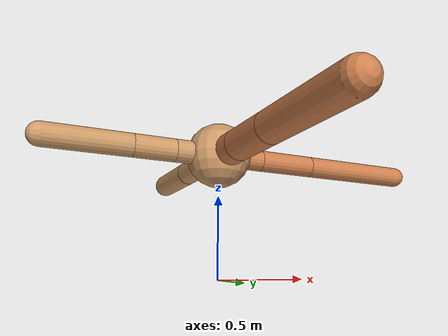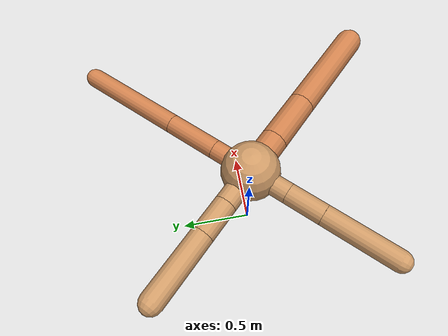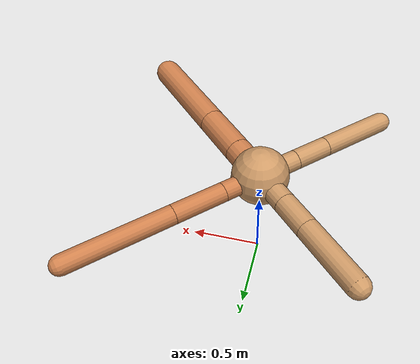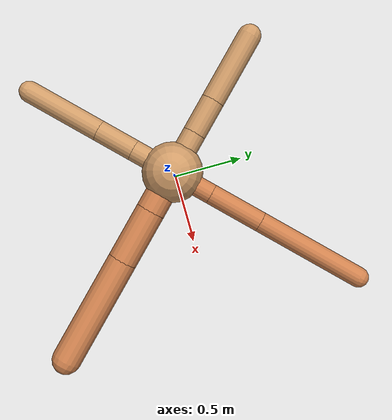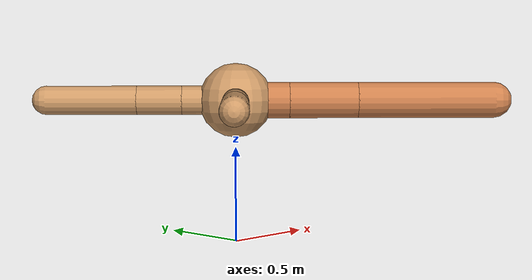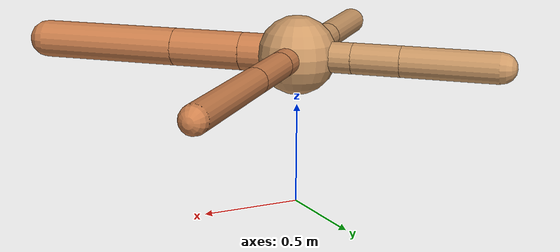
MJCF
<?xml version="1.0" ?>
<mujoco model="ant">

	<compiler angle="degree" coordinate="local" inertiafromgeom="true"/>

	<option integrator="RK4" timestep="0.01"/>

	<custom>

		<numeric data="0.0 0.0 0.55 1.0 0.0 0.0 0.0 0.0 1.0 0.0 -1.0 0.0 -1.0 0.0 1.0" name="init_qpos"/>

	</custom>

	<default>

		<joint armature="1" damping="1" limited="true"/>

		<geom conaffinity="0" condim="3" density="5.0" friction="1.5 0.1 0.1" margin="0.01" rgba="0.8 0.6 0.4 1"/>

	</default>

	<worldbody>

		<body name="torso" pos="0 0 0.75">

			<geom name="torso_geom" pos="0 0 0" size="0.19533426331801437" type="sphere"/>

			<!--joint armature="0" damping="0" limited="false" margin="0.01" name="root" pos="0 0 0" type="free"/-->

			<body name="front_left_leg" pos="0 0 0">

				<geom fromto="0 0 0 0.2 0.2 0" name="aux_1_geom" size="0.0655748112575514" type="capsule" rgba=".8 .5 .3 1"/>

				<body name="aux_1" pos="0.2 0.2 0">

					<joint axis="0 0 1" name="hip_1" pos="0.0 0.0 0.0" range="-40 40" type="hinge"/>

					<geom fromto="0 0 0 0.25255249304472527 0.25255249304472527 0" name="left_leg_geom" size="0.0655748112575514" type="capsule" rgba=".8 .5 .3 1"/>

					<body pos="0.25255249304472527 0.25255249304472527 0" name="front_left_foot">

						<joint axis="-1 1 0" name="ankle_1" pos="0.0 0.0 0.0" range="30 100" type="hinge"/>

						<geom fromto="0 0 0 0.5051049860894505 0.5051049860894505 0" name="left_ankle_geom" size="0.0655748112575514" type="capsule" rgba=".8 .5 .3 1"/>

					</body>

				</body>

			</body>

			<body name="front_right_leg" pos="0 0 0">

				<geom fromto="0 0 0 -0.2 0.2 0" name="aux_2_geom" size="0.07605575035031606" type="capsule"/>

				<body name="aux_2" pos="-0.2 0.2 0">

					<joint axis="0 0 1" name="hip_2" pos="0.0 0.0 0.0" range="-40 40" type="hinge"/>

					<geom fromto="0 0 0 -0.16742600882066738 0.16742600882066738 0" name="right_leg_geom" size="0.07605575035031606" type="capsule"/>

					<body pos="-0.16742600882066738 0.16742600882066738 0" name="front_right_foot">

						<joint axis="1 1 0" name="ankle_2" pos="0.0 0.0 0.0" range="-100 -30" type="hinge"/>

						<geom fromto="0 0 0 -0.33485201764133476 0.33485201764133476 0" name="right_ankle_geom" size="0.07605575035031606" type="capsule"/>

					</body>

				</body>

			</body>

			<body name="left_back_leg" pos="0 0 0">

				<geom fromto="0 0 0 -0.2 -0.2 0" name="aux_3_geom" size="0.06923694167282049" type="capsule"/>

				<body name="aux_3" pos="-0.2 -0.2 0">

					<joint axis="0 0 1" name="hip_3" pos="0.0 0.0 0.0" range="-40 40" type="hinge"/>

					<geom fromto="0 0 0 -0.17825063394511312 -0.17825063394511312 0" name="back_leg_geom" size="0.06923694167282049" type="capsule"/>

					<body pos="-0.17825063394511312 -0.17825063394511312 0" name="left_back_foot">

						<joint axis="-1 1 0" name="ankle_3" pos="0.0 0.0 0.0" range="-100 -30" type="hinge"/>

						<geom fromto="0 0 0 -0.35650126789022624 -0.35650126789022624 0" name="third_ankle_geom" size="0.06923694167282049" type="capsule"/>

					</body>

				</body>

			</body>

			<body name="right_back_leg" pos="0 0 0">

				<geom fromto="0 0 0 0.2 -0.2 0" name="aux_4_geom" size="0.0948261158437251" type="capsule" rgba=".8 .5 .3 1"/>

				<body name="aux_4" pos="0.2 -0.2 0">

					<joint axis="0 0 1" name="hip_4" pos="0.0 0.0 0.0" range="-40 40" type="hinge"/>

					<geom fromto="0 0 0 0.255028934956711 -0.255028934956711 0" name="rightback_leg_geom" size="0.0948261158437251" type="capsule" rgba=".8 .5 .3 1"/>

					<body pos="0.255028934956711 -0.255028934956711 0" name="right_back_foot">

						<joint axis="1 1 0" name="ankle_4" pos="0.0 0.0 0.0" range="30 100" type="hinge"/>

						<geom fromto="0 0 0 0.510057869913422 -0.510057869913422 0" name="fourth_ankle_geom" size="0.0948261158437251" type="capsule" rgba=".8 .5 .3 1"/>

					</body>

				</body>

			</body>

		</body>

	</worldbody>

	<actuator>

		<motor ctrllimited="true" ctrlrange="-1.0 1.0" joint="hip_4" gear="150"/>

		<motor ctrllimited="true" ctrlrange="-1.0 1.0" joint="ankle_4" gear="150"/>

		<motor ctrllimited="true" ctrlrange="-1.0 1.0" joint="hip_1" gear="150"/>

		<motor ctrllimited="true" ctrlrange="-1.0 1.0" joint="ankle_1" gear="150"/>

		<motor ctrllimited="true" ctrlrange="-1.0 1.0" joint="hip_2" gear="150"/>

		<motor ctrllimited="true" ctrlrange="-1.0 1.0" joint="ankle_2" gear="150"/>

		<motor ctrllimited="true" ctrlrange="-1.0 1.0" joint="hip_3" gear="150"/>

		<motor ctrllimited="true" ctrlrange="-1.0 1.0" joint="ankle_3" gear="150"/>

	</actuator>

</mujoco>
